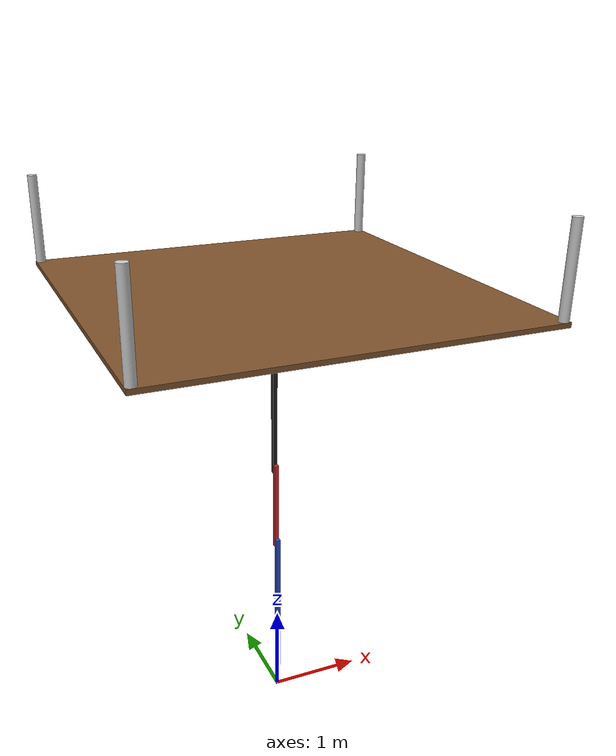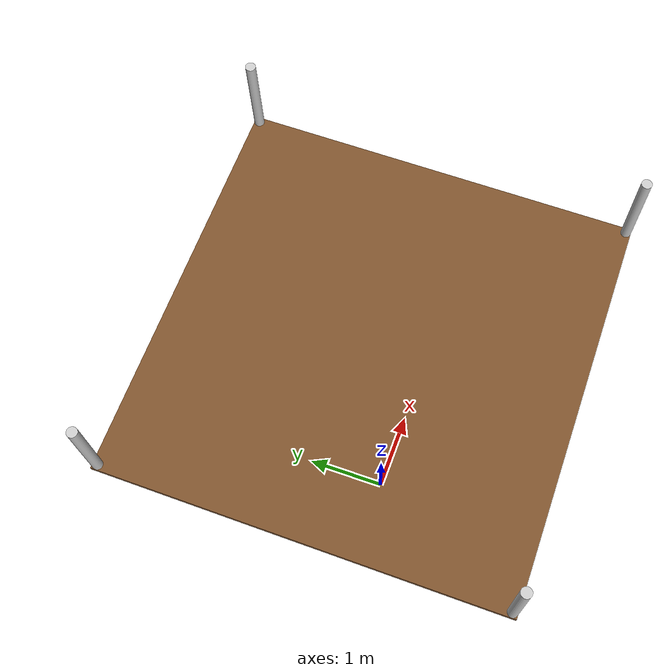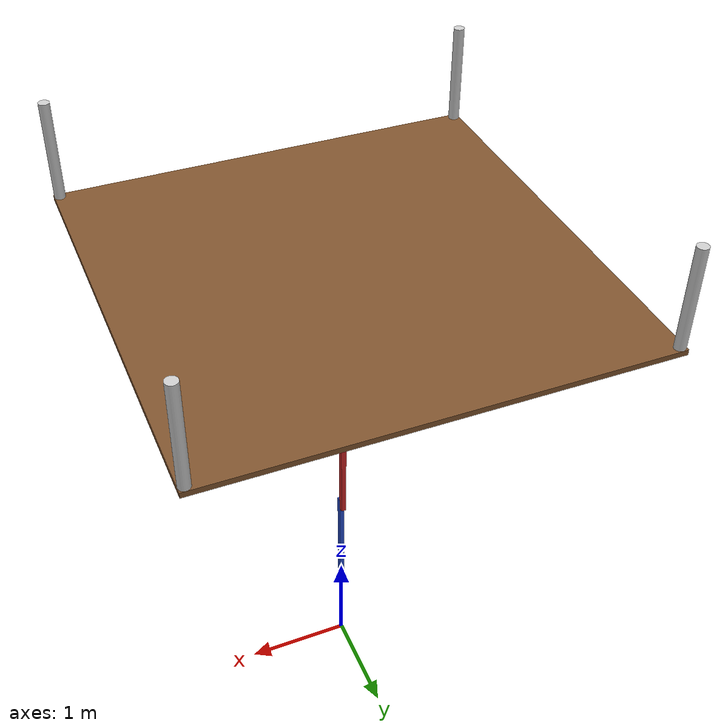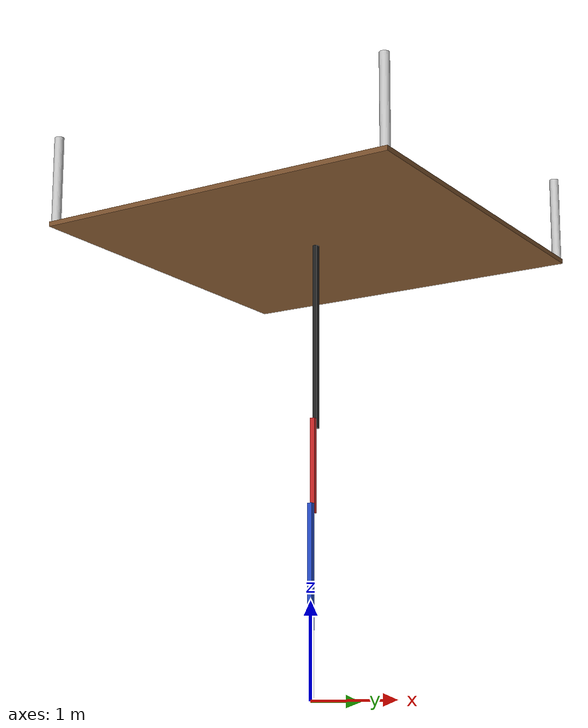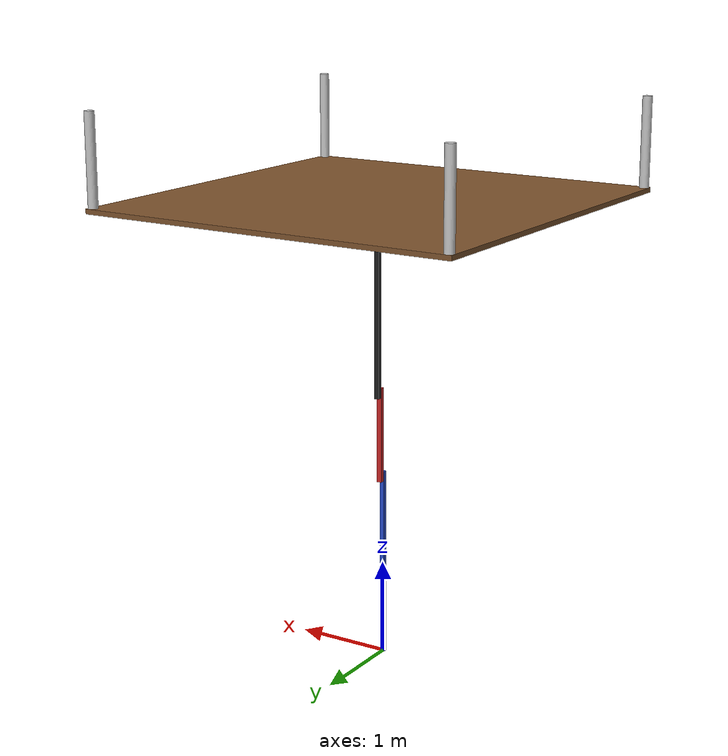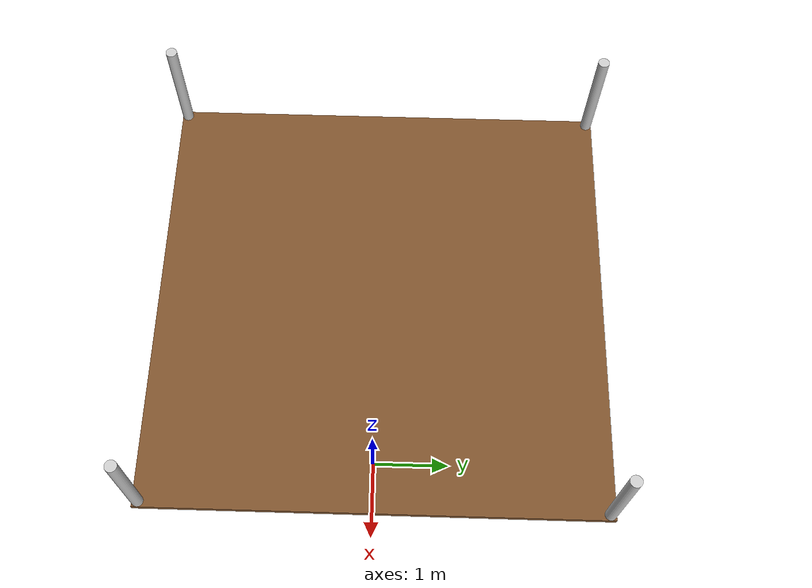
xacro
<?xml version="1.0" encoding="UTF-8"?>
<robot xmlns:xacro="http://wiki.ros.org/xacro" name="table">

    <xacro:include filename="materials.xacro" />
    <xacro:include filename="table_macro.xacro" />
    <xacro:include filename="rrbot_macro.xacro" />

    <link name="world" />

    <xacro:rrbot prefix="rrbot_" parent="world">
        <origin xyz="0 0 0" rpy="0 0 0" />
    </xacro:rrbot>

    <xacro:table prefix="table_" parent="rrbot_tool0">
        <origin xyz="0 0 0.975" rpy="${pi} 0 0" />
    </xacro:table>

</robot>

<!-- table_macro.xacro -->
<robot xmlns:xacro="http://www.ros.org/wiki/xacro">

  <xacro:macro name="table" params="prefix parent *origin">

    <!-- Constants for robot dimensions -->
    <xacro:property name="width" value="4.00" /> <!-- Square dimensions (widthxwidth) of beams -->
    <xacro:property name="height" value="1" /> <!-- base_link -->
    <xacro:property name="table_thickness" value="0.05" /> <!-- link2 -->
    <xacro:property name="leg_length" value="${height-table_thickness}" /> <!-- link1 -->
    <xacro:property name= "table_length" value= "4.00"/>
    <xacro:property name="leg_radius" value="0.05" /> <!-- Space between top of beam and each joint -->

     <!-- joint from "world" to "top"-->
    <joint name="${prefix}world_to_top" type="fixed">
        <xacro:insert_block name="origin"/>
        <parent link="${parent}" />
        <child link="${prefix}top" />
    </joint>

    <!-- top -->
    <link name="${prefix}top">
        <visual>
        <origin rpy="0 0 0" xyz="0 0 ${height - table_thickness}" />
        <geometry>
            <box size="${width} ${table_length} ${table_thickness}" />
        </geometry>
        <material name="brown" />
        </visual>
    </link>

    <!-- joint from "top" to "leg1"-->
    <joint name="${prefix}leg1_joint" type="fixed">
        <origin rpy="0 0 0" xyz="0 -0 0" />
        <parent link="${prefix}top" />
        <child link="${prefix}leg1" />
    </joint>

    <!-- joint from leg1 to world -->

    <!-- Leg 1-->
    <link name="${prefix}leg1">
        <visual>
        <origin rpy="0 0 0" xyz="${(width/2)-leg_radius} ${-((table_length/2)-leg_radius)} ${leg_length/2}" />
        <geometry>
            <cylinder radius="${leg_radius}" length="${leg_length}"/>
        </geometry>
        <material name="light_grey" />
        </visual>
    </link>

    <!--Add joints for legs-->
    <!-- joint from "top" to "leg2"-->
    <joint name="${prefix}leg2_joint" type="fixed">
        <origin rpy="0 0 0" xyz="0 0 0" />
        <parent link="${prefix}top" />
        <child link="${prefix}leg2" />
    </joint>

    <!-- joint from leg2 to world -->

    <!-- Leg 2-->
    <link name="${prefix}leg2">
        <visual>
        <origin rpy="0 0 0" xyz="${(width/2)-leg_radius} ${((table_length/2)-leg_radius)} ${leg_length/2}" />
        <geometry>
            <cylinder radius="${leg_radius}" length="${leg_length}"/>
        </geometry>
        <material name="light_grey" />
        </visual>
    </link>

    <!-- joint from "top" to "leg3"-->
    <joint name="${prefix}leg3_joint" type="fixed">
        <origin rpy="0 0 0" xyz="-0 0 0" />
        <parent link="${prefix}top" />
        <child link="${prefix}leg3" />
    </joint>

    <!-- joint from leg3 to world -->

    <!-- Leg 3-->
    <link name="${prefix}leg3">
        <visual>
        <origin rpy="0 0 0" xyz="${-((width/2)-leg_radius)} ${((table_length/2)-leg_radius)} ${leg_length/2}" />
        <geometry>
            <cylinder radius="${leg_radius}" length="${leg_length}"/>
        </geometry>
        <material name="light_grey" />
        </visual>
    </link>

    <!-- joint from "top" to "leg4"-->
    <joint name="${prefix}leg4_joint" type="fixed">
        <origin rpy="0 0 0" xyz="-0 -0 0" />
        <parent link="${prefix}top" />
        <child link="${prefix}leg4" />
    </joint>

    <!-- joint from leg4 to world -->

<!-- Leg 4-->
    <link name="${prefix}leg4">
        <visual>
        <origin rpy="0 0 0" xyz="${-((width/2)-leg_radius)} ${-((table_length/2)-leg_radius)} ${leg_length/2}" />
        <geometry>
            <cylinder radius="${leg_radius}" length="${leg_length}"/>
        </geometry>
        <material name="light_grey" />
        </visual>
    </link>
  </xacro:macro>

</robot>

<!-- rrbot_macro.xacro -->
<robot xmlns:xacro="http://www.ros.org/wiki/xacro">

  <xacro:macro name="rrbot" params="prefix parent *origin">

    <!-- Constants for robot dimensions -->
    <xacro:property name="width" value="0.05" /> <!-- Square dimensions (widthxwidth) of beams -->
    <xacro:property name="height0" value="2" /> <!-- base_link -->
    <xacro:property name="height1" value="1" /> <!-- link1 -->
    <xacro:property name="height2" value="2" /> <!-- link2 -->
    <xacro:property name="axel_offset" value="0.05" /> <!-- Space between top of beam and each joint -->

    <joint name="${prefix}base_joint" type="fixed">
      <xacro:insert_block name="origin" />
      <parent link="${parent}" />
      <child link="${prefix}base_link" />
    </joint>

    <!-- Base Link -->
    <link name="${prefix}base_link">
      <visual>
        <origin xyz="0 0 ${height0/2}" rpy="0 0 0" />
        <geometry>
          <box size="${width} ${width} ${height0}" />
        </geometry>
        <material name="blue" />
      </visual>
    </link>

    <joint name="${prefix}joint1" type="continuous">
      <parent link="${prefix}base_link" />
      <child link="${prefix}link1" />
      <origin xyz="0 ${width} ${height0 - axel_offset}" rpy="0 0 0" />
      <axis xyz="0 1 0" />
    </joint>

    <!-- Middle Link -->
    <link name="${prefix}link1">
      <visual>
        <origin xyz="0 0 ${height1/2 - axel_offset}" rpy="0 0 0" />
        <geometry>
          <box size="${width} ${width} ${height1}" />
        </geometry>
        <material name="red" />
      </visual>
    </link>

    <joint name="${prefix}joint2" type="continuous">
      <parent link="${prefix}link1" />
      <child link="${prefix}link2" />
      <origin xyz="0 ${width} ${height1 - axel_offset*2}" rpy="0 0 0" />
      <axis xyz="0 1 0" />
    </joint>

    <!-- Top Link -->
    <link name="${prefix}link2">
      <visual>
        <origin xyz="0 0 ${height2/2 - axel_offset}" rpy="0 0 0" />
        <geometry>
          <box size="${width} ${width} ${height2}" />
        </geometry>
        <material name="black" />
      </visual>
    </link>

    <joint name="${prefix}tool_joint" type="fixed">
      <origin xyz="0 0 ${height2-axel_offset}" rpy="0 0 0" />
      <parent link="${prefix}link2" />
      <child link="${prefix}tool0" />
    </joint>

    <!-- Tool Link -->
    <link name="${prefix}tool0"/>

  </xacro:macro>

</robot>
